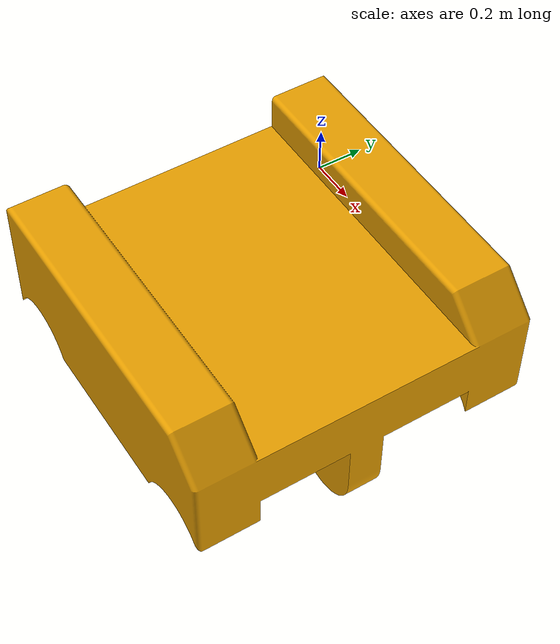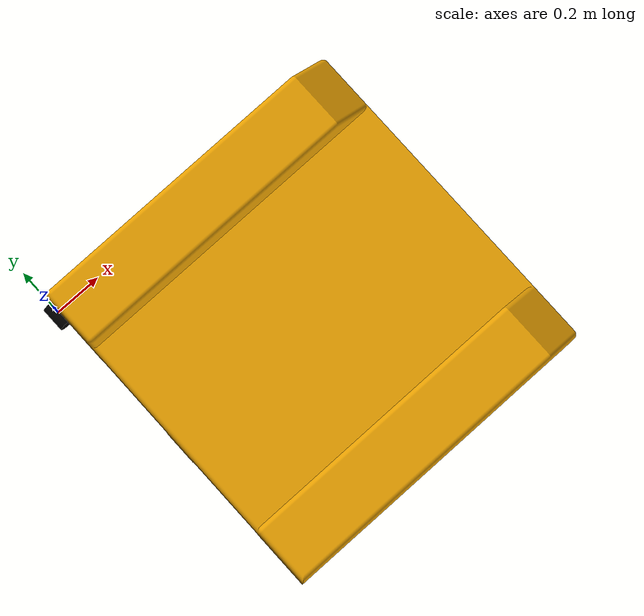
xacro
<?xml version="1.0"?>
<robot name="macroed" xmlns:xacro="http://ros.org/wiki/xacro">

  <xacro:property name="base_length" value="0.200"/>
  <xacro:property name="base_width" value="0.140"/>
  <xacro:property name="base_height" value="0.0764"/>

  <xacro:property name="wheel_z_offset" value="${-base_height/2 + 0.0228}"/><xacro:property name="wheel_width" value="0.036"/>
  <xacro:property name="wheel_radius" value="0.039"/>

  <xacro:property name="wheel_x_offset" value="0.06"/>
  <xacro:property name="wheel_y_offset" value="${base_width/2 + wheel_width/2 + 0.0165}"/>
  <xacro:property name="wheel_z_offset" value="${-base_height/2 + 0.0228}"/>

  <xacro:property name="M_PI" value="3.14159"/>

  <material name="blue">
    <color rgba="0 0 0.8 1"/>
  </material>

  <material name="black">
    <color rgba="0 0 0 1"/>
  </material>

  <material name="white">
    <color rgba="1 1 1 1"/>
  </material>

   <xacro:macro name="default_inertial" params="mass">
    <inertial>
      <mass value="${mass}" />
      <inertia ixx="1.0" ixy="0.0" ixz="0.0" iyy="1.0" iyz="0.0" izz="1.0" />
    </inertial>
  </xacro:macro>

  <link name="base_link">
    <visual>
      <origin xyz="0.0 0.0 0.0" rpy="0.0 0.0 0.0"/>
      <geometry>
        <mesh filename="$(find robot_description)/meshes/base.stl"/>
      </geometry>
    </visual>
    <collision>
      <origin xyz="0.0 0.0 0.0" rpy="0.0 0.0 0.0"/>
      <geometry>
        <box size="${base_length} ${base_width} ${base_height}"/>
      </geometry>
    </collision>
    <xacro:default_inertial mass="10"/>
  </link>

  <link name="right_wheel">
    <visual>
      <origin rpy="1.57075 0 0" xyz="0 0 0"/>
      <geometry>
        <cylinder length="0.1" radius="0.035"/>
      </geometry>
      <material name="black"/>
    </visual>
    <xacro:default_inertial mass="10"/>
  </link>

  <joint name="right_wheeel_joint" type="continuous">
    <axis xyz="0 1 0" rpy="0 0 0" />
    <parent link="base_link"/>
    <child link="right_wheel"/>
    <origin xyz="0.0 0.0 ${-(wheel_radius-wheel_z_offset)}" rpy="0 0 0"/>
  </joint>

</robot>
